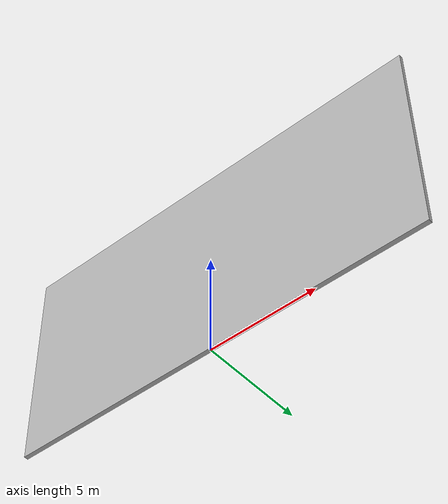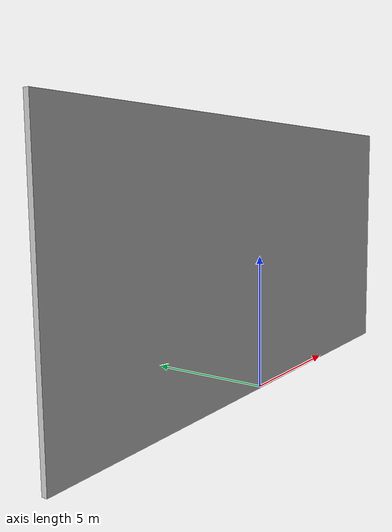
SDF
<?xml version="1.0" ?>
<sdf version="1.3">
  <model name="texture_wall">
    <static>true</static>
    <link name="link">
      <pose>0 0 5 0 0 0</pose>
      <collision name="collision">
        <geometry>
          <box>
            <size>20 0.2 10</size>
          </box>
        </geometry>
      </collision>
      <visual name="visual">
        <cast_shadows>false</cast_shadows>
        <geometry>
          <box>
            <size>20 0.2 10</size>
          </box>
        </geometry>
        <material>
          <script>
            <uri>model://texture_wall/materials/scripts</uri>
            <uri>model://texture_wall/materials/textures</uri>
            <name>vrc/texture_wall</name>
          </script>
        </material>
      </visual>
    </link>
  </model>
</sdf>
